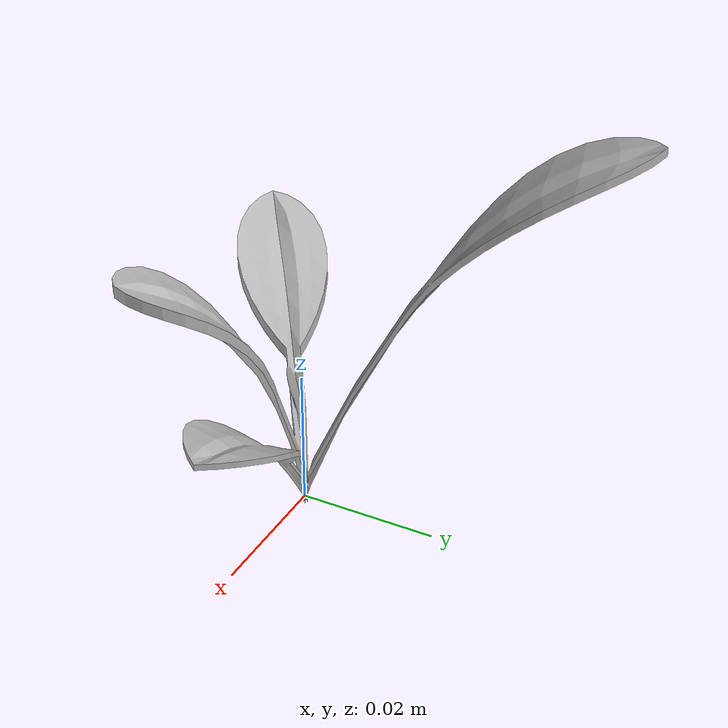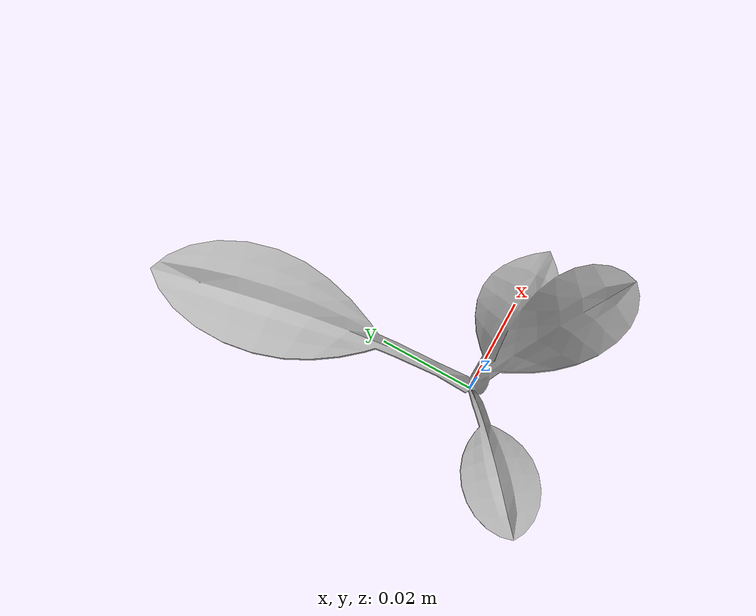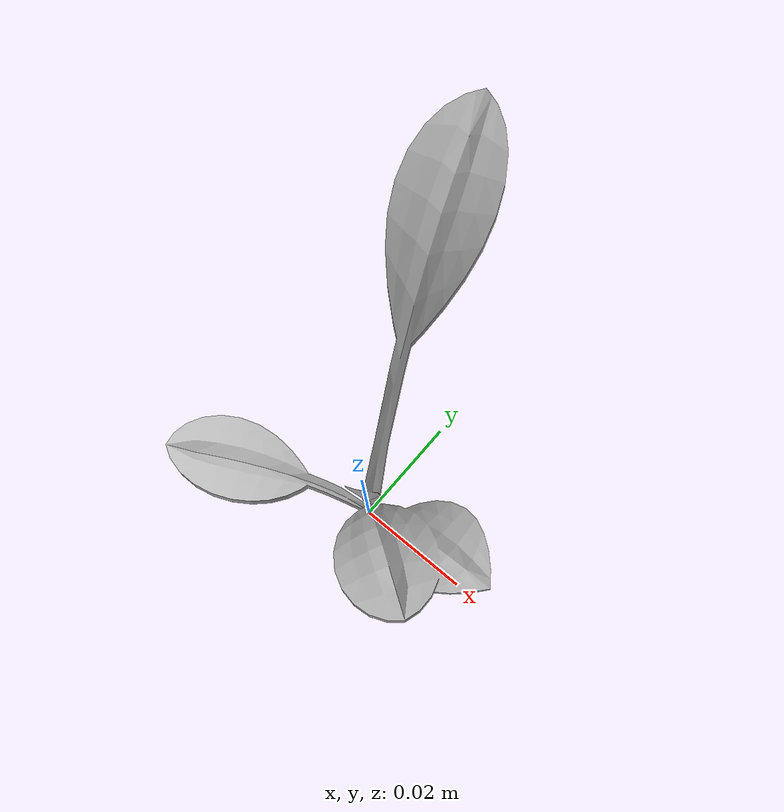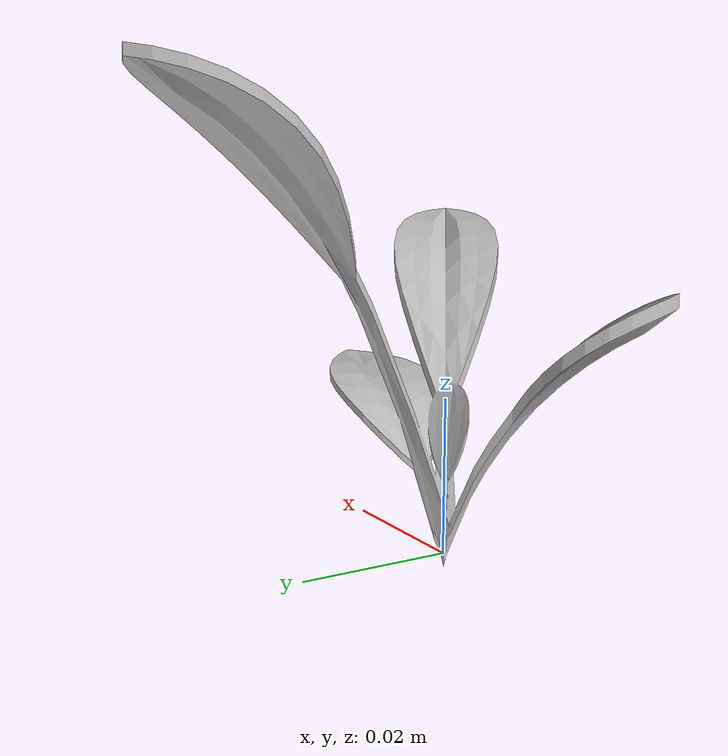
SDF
<sdf version="1.6">
  <model name="sugar_beet_4">
    <static>true</static>
    <link name="body">
      <visual name="visual">
        <geometry>
          <mesh>
            <uri>file:///sugar_beet_4/media/sugar_beet.dae</uri>
          </mesh>
        </geometry>
      </visual>
    </link>
  </model>
</sdf>
